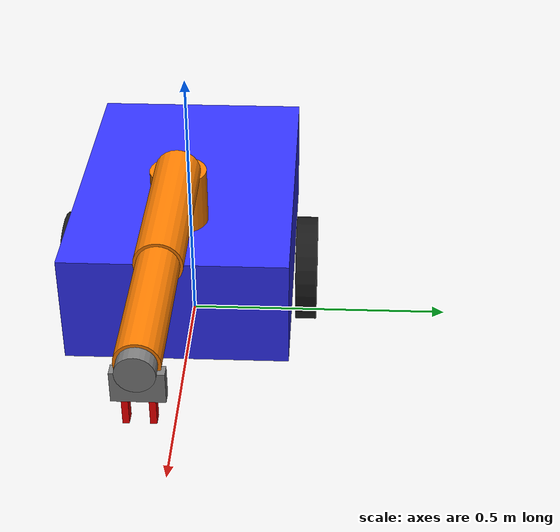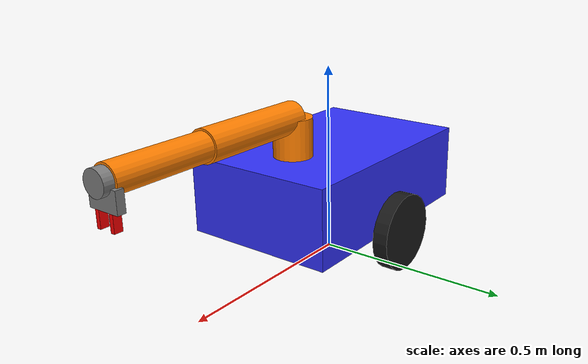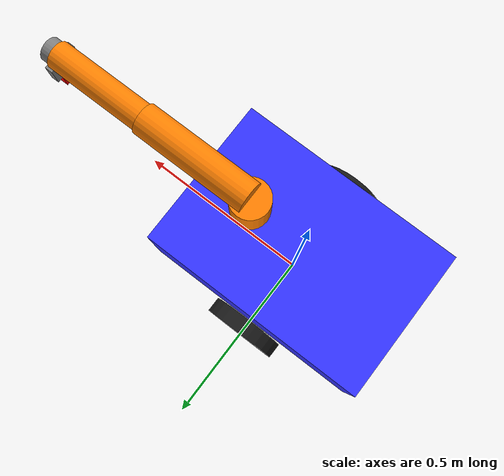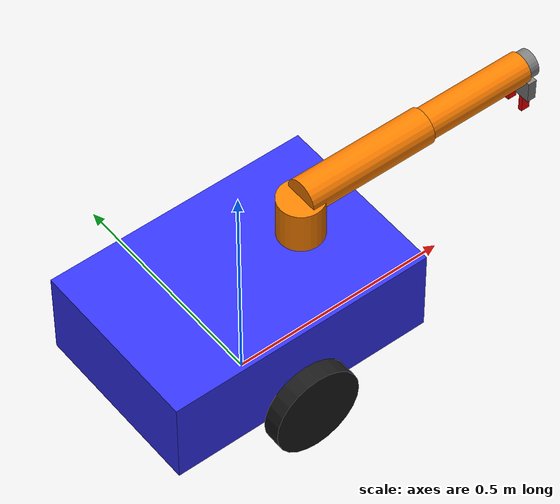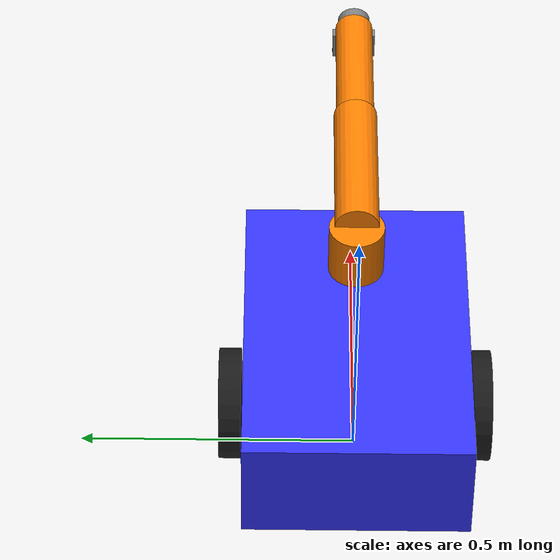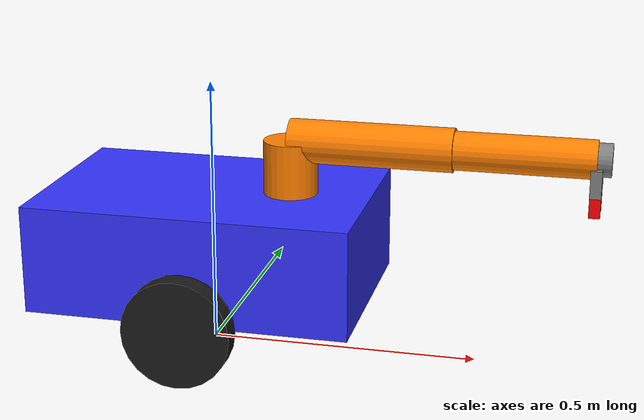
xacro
<?xml version="1.0"?>
<robot xmlns:xacro="http://wiki.ros.org/xacro" name="custom_mobile_manipulator">

  <!-- Define robot constants -->
  <xacro:property name="base_width" value="0.4"/>
  <xacro:property name="base_length" value="0.6"/>
  <xacro:property name="base_height" value="0.2"/>
  <xacro:property name="wheel_radius" value="0.1"/>
  <xacro:property name="wheel_width" value="0.04"/>
  <xacro:property name="wheel_separation" value="0.45"/>
  <xacro:property name="caster_radius" value="0.05"/>

  <!-- Define inertial macros -->
  <xacro:macro name="box_inertia" params="m w h d">
    <inertial>
      <mass value="${m}"/>
      <inertia ixx="${m*(h*h+d*d)/12}" ixy="0" ixz="0"
               iyy="${m*(w*w+d*d)/12}" iyz="0"
               izz="${m*(w*w+h*h)/12}"/>
    </inertial>
  </xacro:macro>

  <xacro:macro name="cylinder_inertia" params="m r h">
    <inertial>
      <mass value="${m}"/>
      <inertia ixx="${m*(3*r*r+h*h)/12}" ixy="0" ixz="0"
               iyy="${m*(3*r*r+h*h)/12}" iyz="0"
               izz="${m*r*r/2}"/>
    </inertial>
  </xacro:macro>

  <xacro:macro name="sphere_inertia" params="m r">
    <inertial>
      <mass value="${m}"/>
      <inertia ixx="${2*m*r*r/5}" ixy="0" ixz="0"
               iyy="${2*m*r*r/5}" iyz="0"
               izz="${2*m*r*r/5}"/>
    </inertial>
  </xacro:macro>

  <!-- Base Link -->
  <link name="base_footprint"/>

  <link name="base_link">
    <visual>
      <geometry>
        <box size="${base_length} ${base_width} ${base_height}"/>
      </geometry>
      <material name="blue">
        <color rgba="0.2 0.2 1.0 1.0"/>
      </material>
    </visual>
    <collision>
      <geometry>
        <box size="${base_length} ${base_width} ${base_height}"/>
      </geometry>
    </collision>
    <xacro:box_inertia m="10" w="${base_length}" h="${base_width}" d="${base_height}"/>
  </link>

  <joint name="base_footprint_joint" type="fixed">
    <parent link="base_footprint"/>
    <child link="base_link"/>
    <origin xyz="0 0 ${wheel_radius + base_height/2}" rpy="0 0 0"/>
  </joint>

  <!-- Wheels -->
  <xacro:macro name="wheel" params="prefix y_offset">
    <link name="${prefix}_wheel">
      <visual>
        <geometry>
          <cylinder radius="${wheel_radius}" length="${wheel_width}"/>
        </geometry>
        <material name="black">
          <color rgba="0.1 0.1 0.1 1.0"/>
        </material>
      </visual>
      <collision>
        <geometry>
          <cylinder radius="${wheel_radius}" length="${wheel_width}"/>
        </geometry>
      </collision>
      <xacro:cylinder_inertia m="1" r="${wheel_radius}" h="${wheel_width}"/>
    </link>

    <joint name="${prefix}_wheel_joint" type="continuous">
      <parent link="base_link"/>
      <child link="${prefix}_wheel"/>
      <origin xyz="0 ${y_offset} ${-base_height/2}" rpy="${pi/2} 0 0"/>
      <axis xyz="0 0 1"/>
      <limit effort="10" velocity="10"/>
    </joint>
  </xacro:macro>

  <xacro:wheel prefix="left" y_offset="${wheel_separation/2}"/>
  <xacro:wheel prefix="right" y_offset="${-wheel_separation/2}"/>

  <!-- Front Caster -->
  <link name="front_caster">
    <visual>
      <geometry>
        <sphere radius="${caster_radius}"/>
      </geometry>
      <material name="gray">
        <color rgba="0.5 0.5 0.5 1.0"/>
      </material>
    </visual>
    <collision>
      <geometry>
        <sphere radius="${caster_radius}"/>
      </geometry>
    </collision>
    <xacro:sphere_inertia m="0.5" r="${caster_radius}"/>
  </link>

  <joint name="front_caster_joint" type="fixed">
    <parent link="base_link"/>
    <child link="front_caster"/>
    <origin xyz="${base_length/2 - caster_radius} 0 ${-base_height/2 - caster_radius + wheel_radius}" rpy="0 0 0"/>
  </joint>

  <!-- Rear Caster -->
  <link name="rear_caster">
    <visual>
      <geometry>
        <sphere radius="${caster_radius}"/>
      </geometry>
      <material name="gray">
        <color rgba="0.5 0.5 0.5 1.0"/>
      </material>
    </visual>
    <collision>
      <geometry>
        <sphere radius="${caster_radius}"/>
      </geometry>
    </collision>
    <xacro:sphere_inertia m="0.5" r="${caster_radius}"/>
  </link>

  <joint name="rear_caster_joint" type="fixed">
    <parent link="base_link"/>
    <child link="rear_caster"/>
    <origin xyz="${-base_length/2 + caster_radius} 0 ${-base_height/2 - caster_radius + wheel_radius}" rpy="0 0 0"/>
  </joint>

  <!-- Manipulator Arm -->
  <!-- Shoulder -->
  <link name="shoulder_link">
    <visual>
      <geometry>
        <cylinder radius="0.05" length="0.1"/>
      </geometry>
      <material name="orange">
        <color rgba="1.0 0.5 0.0 1.0"/>
      </material>
    </visual>
    <collision>
      <geometry>
        <cylinder radius="0.05" length="0.1"/>
      </geometry>
    </collision>
    <xacro:cylinder_inertia m="1" r="0.05" h="0.1"/>
  </link>

  <joint name="shoulder_pan_joint" type="revolute">
    <parent link="base_link"/>
    <child link="shoulder_link"/>
    <origin xyz="0.15 0 ${base_height/2 + 0.05}" rpy="0 0 0"/>
    <axis xyz="0 0 1"/>
    <limit lower="-${pi}" upper="${pi}" effort="50" velocity="1.0"/>
  </joint>

  <!-- Upper Arm -->
  <link name="upper_arm_link">
    <visual>
      <origin xyz="0.15 0 0" rpy="0 ${pi/2} 0"/>
      <geometry>
        <cylinder radius="0.04" length="0.3"/>
      </geometry>
      <material name="orange">
        <color rgba="1.0 0.5 0.0 1.0"/>
      </material>
    </visual>
    <collision>
      <origin xyz="0.15 0 0" rpy="0 ${pi/2} 0"/>
      <geometry>
        <cylinder radius="0.04" length="0.3"/>
      </geometry>
    </collision>
    <xacro:cylinder_inertia m="0.8" r="0.04" h="0.3"/>
  </link>

  <joint name="shoulder_lift_joint" type="revolute">
    <parent link="shoulder_link"/>
    <child link="upper_arm_link"/>
    <origin xyz="0 0 0.05" rpy="0 0 0"/>
    <axis xyz="0 1 0"/>
    <limit lower="-${pi/2}" upper="${pi/2}" effort="50" velocity="1.0"/>
  </joint>

  <!-- Forearm -->
  <link name="forearm_link">
    <visual>
      <origin xyz="0.125 0 0" rpy="0 ${pi/2} 0"/>
      <geometry>
        <cylinder radius="0.035" length="0.25"/>
      </geometry>
      <material name="orange">
        <color rgba="1.0 0.5 0.0 1.0"/>
      </material>
    </visual>
    <collision>
      <origin xyz="0.125 0 0" rpy="0 ${pi/2} 0"/>
      <geometry>
        <cylinder radius="0.035" length="0.25"/>
      </geometry>
    </collision>
    <xacro:cylinder_inertia m="0.6" r="0.035" h="0.25"/>
  </link>

  <joint name="elbow_joint" type="revolute">
    <parent link="upper_arm_link"/>
    <child link="forearm_link"/>
    <origin xyz="0.3 0 0" rpy="0 0 0"/>
    <axis xyz="0 1 0"/>
    <limit lower="-${pi}" upper="0" effort="30" velocity="1.0"/>
  </joint>

  <!-- Wrist -->
  <link name="wrist_link">
    <visual>
      <geometry>
        <cylinder radius="0.03" length="0.05"/>
      </geometry>
      <material name="gray">
        <color rgba="0.5 0.5 0.5 1.0"/>
      </material>
    </visual>
    <collision>
      <geometry>
        <cylinder radius="0.03" length="0.05"/>
      </geometry>
    </collision>
    <xacro:cylinder_inertia m="0.3" r="0.03" h="0.05"/>
  </link>

  <joint name="wrist_joint" type="continuous">
    <parent link="forearm_link"/>
    <child link="wrist_link"/>
    <origin xyz="0.25 0 0" rpy="0 ${pi/2} 0"/>
    <axis xyz="0 0 1"/>
    <limit effort="10" velocity="1.0"/>
  </joint>

  <!-- Gripper -->
  <link name="gripper_base">
    <visual>
      <geometry>
        <box size="0.05 0.08 0.02"/>
      </geometry>
      <material name="gray">
        <color rgba="0.5 0.5 0.5 1.0"/>
      </material>
    </visual>
    <collision>
      <geometry>
        <box size="0.05 0.08 0.02"/>
      </geometry>
    </collision>
    <xacro:box_inertia m="0.1" w="0.05" h="0.08" d="0.02"/>
  </link>

  <joint name="gripper_base_joint" type="fixed">
    <parent link="wrist_link"/>
    <child link="gripper_base"/>
    <origin xyz="0.035 0 0" rpy="0 0 0"/>
  </joint>

  <!-- Gripper Fingers -->
  <link name="left_finger">
    <visual>
      <origin xyz="0.02 0 0" rpy="0 0 0"/>
      <geometry>
        <box size="0.04 0.01 0.02"/>
      </geometry>
      <material name="red">
        <color rgba="1.0 0.0 0.0 1.0"/>
      </material>
    </visual>
    <collision>
      <origin xyz="0.02 0 0" rpy="0 0 0"/>
      <geometry>
        <box size="0.04 0.01 0.02"/>
      </geometry>
    </collision>
    <xacro:box_inertia m="0.05" w="0.04" h="0.01" d="0.02"/>
  </link>

  <joint name="left_finger_joint" type="prismatic">
    <parent link="gripper_base"/>
    <child link="left_finger"/>
    <origin xyz="0.025 0.02 0" rpy="0 0 0"/>
    <axis xyz="0 1 0"/>
    <limit lower="0" upper="0.025" effort="10" velocity="0.1"/>
  </joint>

  <link name="right_finger">
    <visual>
      <origin xyz="0.02 0 0" rpy="0 0 0"/>
      <geometry>
        <box size="0.04 0.01 0.02"/>
      </geometry>
      <material name="red">
        <color rgba="1.0 0.0 0.0 1.0"/>
      </material>
    </visual>
    <collision>
      <origin xyz="0.02 0 0" rpy="0 0 0"/>
      <geometry>
        <box size="0.04 0.01 0.02"/>
      </geometry>
    </collision>
    <xacro:box_inertia m="0.05" w="0.04" h="0.01" d="0.02"/>
  </link>

  <joint name="right_finger_joint" type="prismatic">
    <parent link="gripper_base"/>
    <child link="right_finger"/>
    <origin xyz="0.025 -0.02 0" rpy="0 0 0"/>
    <axis xyz="0 -1 0"/>
    <limit lower="0" upper="0.025" effort="10" velocity="0.1"/>
    <mimic joint="left_finger_joint" multiplier="1" offset="0"/>
  </joint>

  <!-- Gazebo ROS2 Control Plugin -->
  <ros2_control name="GazeboSimSystem" type="system">
    <hardware>
      <plugin>gz_ros2_control/GazeboSimSystem</plugin>
    </hardware>

    <!-- Differential Drive -->
    <joint name="left_wheel_joint">
      <command_interface name="velocity"/>
      <state_interface name="position"/>
      <state_interface name="velocity"/>
    </joint>

    <joint name="right_wheel_joint">
      <command_interface name="velocity"/>
      <state_interface name="position"/>
      <state_interface name="velocity"/>
    </joint>

    <!-- Arm Joints -->
    <joint name="shoulder_pan_joint">
      <command_interface name="position"/>
      <state_interface name="position"/>
      <state_interface name="velocity"/>
    </joint>

    <joint name="shoulder_lift_joint">
      <command_interface name="position"/>
      <state_interface name="position"/>
      <state_interface name="velocity"/>
    </joint>

    <joint name="elbow_joint">
      <command_interface name="position"/>
      <state_interface name="position"/>
      <state_interface name="velocity"/>
    </joint>

    <joint name="wrist_joint">
      <command_interface name="position"/>
      <state_interface name="position"/>
      <state_interface name="velocity"/>
    </joint>

    <!-- Gripper -->
    <joint name="left_finger_joint">
      <command_interface name="position"/>
      <state_interface name="position"/>
      <state_interface name="velocity"/>
    </joint>
  </ros2_control>

  <gazebo>
    <plugin filename="gz_ros2_control-system" name="gz_ros2_control::GazeboSimROS2ControlPlugin">
      <parameters>$(find custom_robot_gz)/config/custom_robot_controllers.yaml</parameters>
    </plugin>
  </gazebo>

</robot>
